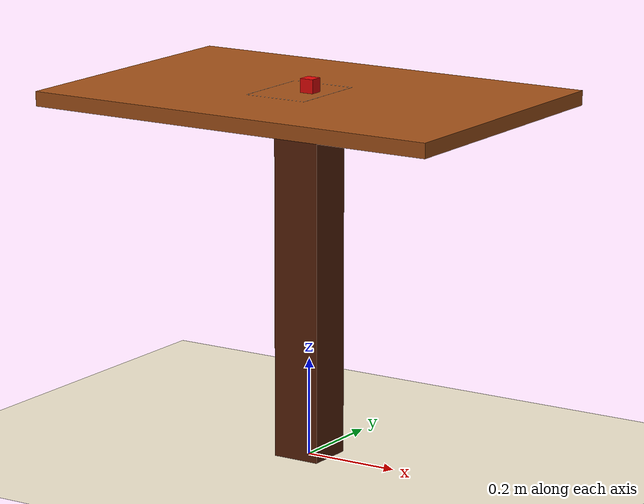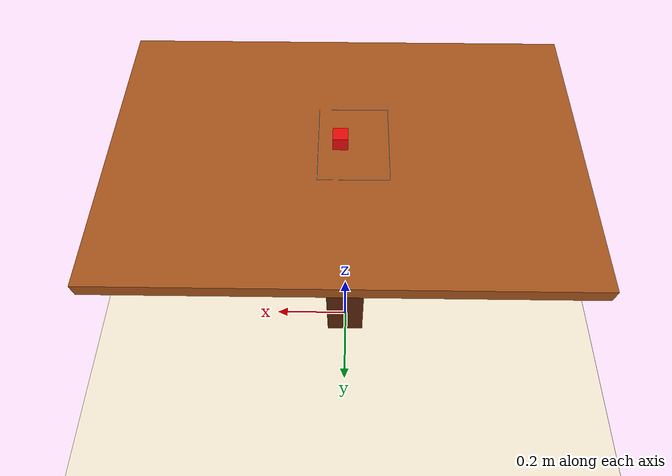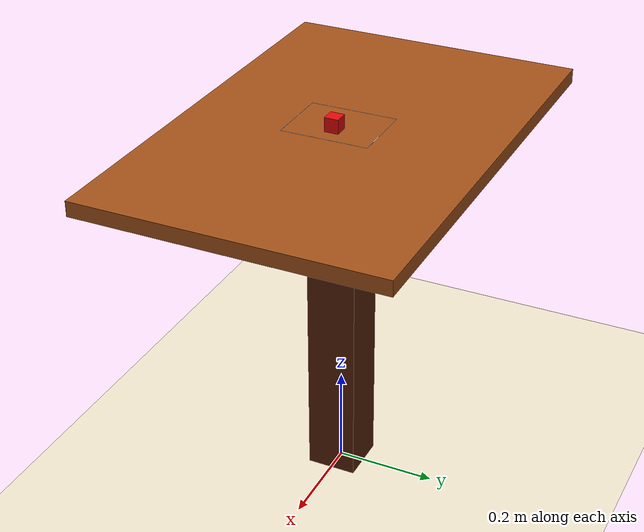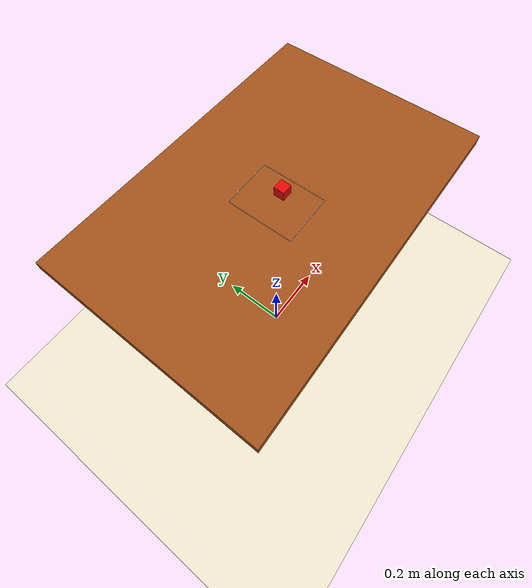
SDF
<sdf version="1.9">
 <world name="robot_world">
  <physics name="day3_v5_1ms" type="ignored">
   <max_step_size>0.002</max_step_size>
   <real_time_factor>1</real_time_factor>
   <real_time_update_rate>500</real_time_update_rate>
   <max_contacts>20</max_contacts>
   <dart><solver><solver_type>dantzig</solver_type></solver><collision_detector>ode</collision_detector></dart>
  </physics>
  <plugin name="ignition::gazebo::systems::Physics" filename="ignition-gazebo-physics-system"/>
  <plugin name="ignition::gazebo::systems::UserCommands" filename="ignition-gazebo-user-commands-system"/>
  <plugin name="ignition::gazebo::systems::SceneBroadcaster" filename="ignition-gazebo-scene-broadcaster-system"/>
  <plugin name="gz::sim::systems::Contact" filename="ignition-gazebo-contact-system"/>
  <plugin name="ignition::gazebo::systems::Sensors" filename="ignition-gazebo-sensors-system">
   <render_engine>ogre2</render_engine>
  </plugin>
  <scene><ambient>1 1 1 1</ambient><background>0.8 0.8 0.8 1</background><shadows>true</shadows></scene>
  <gravity>0 0 -9.80665</gravity>
  <magnetic_field>6e-06 2.3e-05 -4.2e-05</magnetic_field>
  <atmosphere type="adiabatic"/>
  <model name="ground_plane">
   <static>true</static>
   <link name="link">
    <collision name="collision">
     <geometry><plane><normal>0 0 1</normal><size>100 100</size></plane></geometry>
    </collision>
    <visual name="visual">
     <geometry><plane><normal>0 0 1</normal><size>100 100</size></plane></geometry>
     <material>
      <ambient>0.94 0.9 0.81 1</ambient>
      <diffuse>0.94 0.9 0.81 1</diffuse>
      <specular>1 1 1 0</specular>
     </material>
    </visual>
    <inertial>
     <mass>1</mass>
     <inertia><ixx>1</ixx><ixy>0</ixy><ixz>0</ixz><iyy>1</iyy><iyz>0</iyz><izz>1</izz></inertia>
    </inertial>
   </link>
  </model>
  <model name="table">
   <static>true</static>
   <link name="table_link">
    <collision name="top_collision">
     <pose>0 0 0.735 0 0 0</pose>
     <geometry><box><size>0.9 0.6 0.03</size></box></geometry>
    </collision>
    <visual name="top_visual">
     <pose>0 0 0.735 0 0 0</pose>
     <geometry><box><size>0.9 0.6 0.03</size></box></geometry>
     <material>
      <ambient>0.36 0.17 0.06 1</ambient>
      <diffuse>0.64 0.32 0.1 1</diffuse>
      <specular>0.05 0.03 0.02 1</specular>
      <emissive>0 0 0 1</emissive>
     </material>
    </visual>
    <collision name="pedestal_collision">
     <pose>0 0 0.36 0 0 0</pose>
     <geometry><box><size>0.1 0.1 0.72</size></box></geometry>
    </collision>
    <visual name="pedestal_visual">
     <pose>0 0 0.36 0 0 0</pose>
     <geometry><box><size>0.1 0.1 0.72</size></box></geometry>
     <material>
      <ambient>0.18 0.07 0.02 1</ambient>
      <diffuse>0.34 0.13 0.04 1</diffuse>
      <specular>0.03 0.02 0.01 1</specular>
      <emissive>0 0 0 1</emissive>
     </material>
    </visual>
    <inertial>
     <mass>1</mass>
     <inertia><ixx>1</ixx><ixy>0</ixy><ixz>0</ixz><iyy>1</iyy><iyz>0</iyz><izz>1</izz></inertia>
    </inertial>
   </link>
  </model>
  <model name="white_recognition_area">
   <static>true</static>
   <pose>-0.015408 -0.012439 0.7501 0 -0 -3.13666</pose>
   <link name="outline">
    <visual name="edge_0">
     <pose>0 0.0875 0 0 0 0</pose>
     <geometry><box><size>0.135 0.001 0.0001</size></box></geometry>
     <material><ambient>1 1 1 1</ambient><diffuse>1 1 1 1</diffuse></material>
    </visual>
    <visual name="edge_1">
     <pose>0 -0.0875 0 0 0 0</pose>
     <geometry><box><size>0.135 0.001 0.0001</size></box></geometry>
     <material><ambient>1 1 1 1</ambient><diffuse>1 1 1 1</diffuse></material>
    </visual>
    <visual name="edge_2">
     <pose>0.0675 0 0 0 0 0</pose>
     <geometry><box><size>0.001 0.175 0.0001</size></box></geometry>
     <material><ambient>1 1 1 1</ambient><diffuse>1 1 1 1</diffuse></material>
    </visual>
    <visual name="edge_3">
     <pose>-0.0675 0 0 0 0 0</pose>
     <geometry><box><size>0.001 0.175 0.0001</size></box></geometry>
     <material><ambient>1 1 1 1</ambient><diffuse>1 1 1 1</diffuse></material>
    </visual>
    <inertial>
     <mass>1</mass>
     <inertia><ixx>1</ixx><ixy>0</ixy><ixz>0</ixz><iyy>1</iyy><iyz>0</iyz><izz>1</izz></inertia>
    </inertial>
   </link>
  </model>
  <model name="wood_block">
   <pose>0.009068 -0.010174 0.764283 0 -0 -0</pose>
   <link name="block_link">
    <inertial>
     <mass>0.037099399999999998</mass>
     <inertia>
      <ixx>5.0453200000000003e-06</ixx>
      <iyy>5.0453200000000003e-06</iyy>
      <izz>5.0453200000000003e-06</izz>
      <ixy>0</ixy>
      <ixz>0</ixz>
      <iyz>0</iyz>
     </inertia>
    </inertial>
    <collision name="block_collision">
     <geometry><box><size>0.028565 0.028565 0.028565</size></box></geometry>
     <max_contacts>20</max_contacts>
     <surface>
      <friction>
       <ode><mu>7.7843147582976648</mu><mu2>5.2618962609393725</mu2><slip1>0</slip1><slip2>0</slip2></ode>
      </friction>
      <contact>
       <collide_without_contact>false</collide_without_contact>
       <poissons_ratio>0.34999999999999998</poissons_ratio>
       <elastic_modulus>100000000</elastic_modulus>
       <ode><kp>100000</kp><kd>10</kd><max_vel>0.02</max_vel><min_depth>0.0001</min_depth></ode>
      </contact>
     </surface>
    </collision>
    <visual name="block_visual">
     <geometry><box><size>0.028565 0.028565 0.028565</size></box></geometry>
     <material>
      <ambient>0.45 0.01 0.01 1</ambient>
      <diffuse>0.9 0.03 0.03 1</diffuse>
      <specular>0.06 0.04 0.04 1</specular>
      <emissive>0 0 0 1</emissive>
     </material>
    </visual>
    <sensor name="day3_v5_block_contact" type="contact">
     <always_on>true</always_on>
     <update_rate>125</update_rate>
     <visualize>false</visualize>
     <topic>/day3_v5/block/contacts</topic>
     <contact><collision>block_collision</collision><topic>__default_topic__</topic></contact>
    </sensor>
   </link>
   <plugin name="ignition::gazebo::systems::OdometryPublisher" filename="ignition-gazebo-odometry-publisher-system">
    <dimensions>3</dimensions>
    <odom_publish_frequency>50</odom_publish_frequency>
    <odom_topic>/day3_v5/block/odometry</odom_topic>
    <odom_frame>world</odom_frame>
    <robot_base_frame>block_link</robot_base_frame>
    <tf_topic>/day3_v5/block/odometry_tf</tf_topic>
   </plugin>
   <static>false</static>
  </model>
  <light name="sun" type="directional">
   <pose>0 0 10 0 -0 0</pose>
   <intensity>1</intensity>
   <direction>-0.5 0.1 -0.9</direction>
   <diffuse>0.8 0.8 0.8 1</diffuse>
   <specular>0.2 0.2 0.2 1</specular>
   <attenuation>
    <range>1000</range>
    <linear>0.01</linear>
    <constant>0.90000000000000002</constant>
    <quadratic>0.001</quadratic>
   </attenuation>
   <spot><inner_angle>0</inner_angle><outer_angle>0</outer_angle><falloff>0</falloff></spot>
  </light>
 </world>
</sdf>
